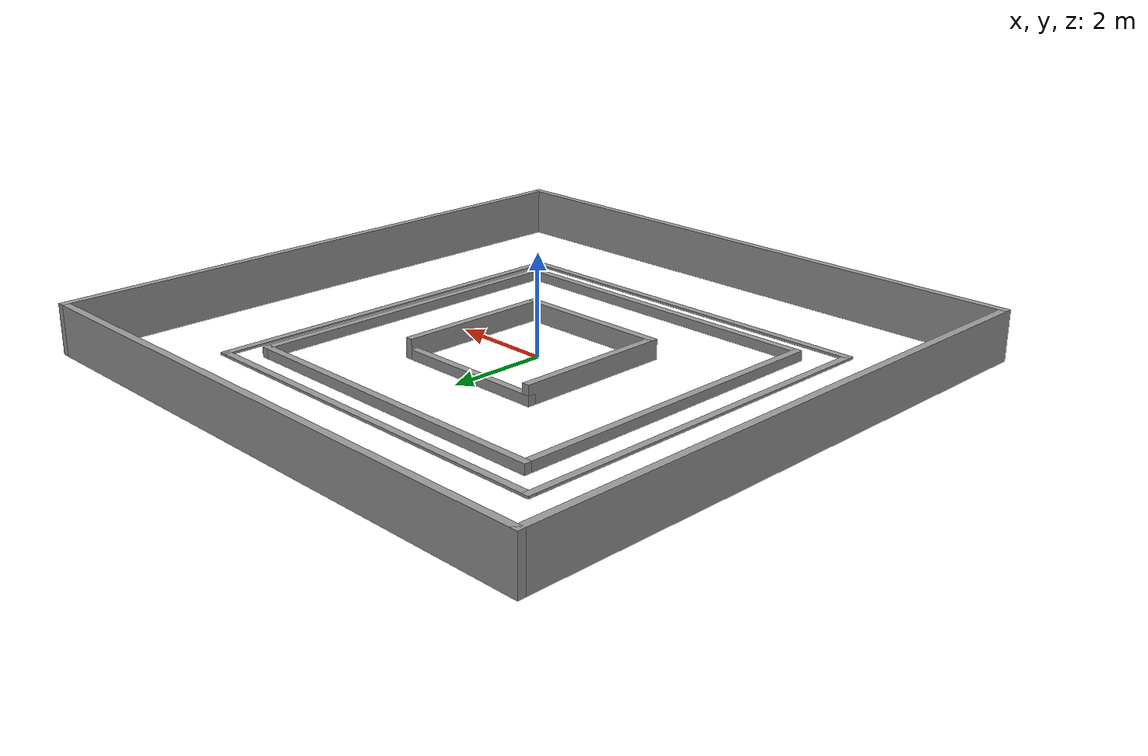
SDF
<?xml version='1.0'?>
<sdf version='1.6'>
  <model name='wtr_wall'>
    <pose frame=''>0.041 0.114 0 0 -0 0</pose>
    <link name='Wall_0'>
      <collision name='Wall_0_Collision'>
        <geometry>
          <box>
            <size>12.25 0.15 1</size>
          </box>
        </geometry>
        <pose frame=''>0 0 0.5 0 -0 0</pose>
      </collision>
      <visual name='Wall_0_Visual'>
        <pose frame=''>0 0 0.5 0 -0 0</pose>
        <geometry>
          <box>
            <size>12.25 0.15 1</size>
          </box>
        </geometry>
        <material>
          <script>
            <uri>file://media/materials/scripts/gazebo.material</uri>
            <name>Gazebo/Grey</name>
          </script>
          <ambient>1 1 1 1</ambient>
        </material>
        <meta>
          <layer>0</layer>
        </meta>
      </visual>
      <pose frame=''>-6.05 0 0 0 -0 -1.5708</pose>
    </link>
    <link name='Wall_1'>
      <collision name='Wall_1_Collision'>
        <geometry>
          <box>
            <size>12.25 0.15 1</size>
          </box>
        </geometry>
        <pose frame=''>0 0 0.5 0 -0 0</pose>
      </collision>
      <visual name='Wall_1_Visual'>
        <pose frame=''>0 0 0.5 0 -0 0</pose>
        <geometry>
          <box>
            <size>12.25 0.15 1</size>
          </box>
        </geometry>
        <material>
          <script>
            <uri>file://media/materials/scripts/gazebo.material</uri>
            <name>Gazebo/Grey</name>
          </script>
          <ambient>1 1 1 1</ambient>
        </material>
        <meta>
          <layer>0</layer>
        </meta>
      </visual>
      <pose frame=''>-0 -6.05 0 0 -0 0</pose>
    </link>
    <link name='Wall_10'>
      <collision name='Wall_10_Collision'>
        <geometry>
          <box>
            <size>7 0.15 0.2</size>
          </box>
        </geometry>
        <pose frame=''>0 0 0.1 0 -0 0</pose>
      </collision>
      <visual name='Wall_10_Visual'>
        <pose frame=''>0 0 0.1 0 -0 0</pose>
        <geometry>
          <box>
            <size>7 0.15 0.2</size>
          </box>
        </geometry>
        <material>
          <script>
            <uri>file://media/materials/scripts/gazebo.material</uri>
            <name>Gazebo/Grey</name>
          </script>
          <ambient>1 1 1 1</ambient>
        </material>
        <meta>
          <layer>0</layer>
        </meta>
      </visual>
      <pose frame=''>-3.459 0.036 0 0 -0 -1.5708</pose>
    </link>
    <link name='Wall_11'>
      <collision name='Wall_11_Collision'>
        <geometry>
          <box>
            <size>7 0.15 0.2</size>
          </box>
        </geometry>
        <pose frame=''>0 0 0.1 0 -0 0</pose>
      </collision>
      <visual name='Wall_11_Visual'>
        <pose frame=''>0 0 0.1 0 -0 0</pose>
        <geometry>
          <box>
            <size>7 0.15 0.2</size>
          </box>
        </geometry>
        <material>
          <script>
            <uri>file://media/materials/scripts/gazebo.material</uri>
            <name>Gazebo/Grey</name>
          </script>
          <ambient>1 1 1 1</ambient>
        </material>
        <meta>
          <layer>0</layer>
        </meta>
      </visual>
      <pose frame=''>-0.034 -3.389 0 0 -0 0</pose>
    </link>
    <link name='Wall_12'>
      <collision name='Wall_12_Collision'>
        <geometry>
          <box>
            <size>7 0.15 0.2</size>
          </box>
        </geometry>
        <pose frame=''>0 0 0.1 0 -0 0</pose>
      </collision>
      <visual name='Wall_12_Visual'>
        <pose frame=''>0 0 0.1 0 -0 0</pose>
        <geometry>
          <box>
            <size>7 0.15 0.2</size>
          </box>
        </geometry>
        <material>
          <script>
            <uri>file://media/materials/scripts/gazebo.material</uri>
            <name>Gazebo/Grey</name>
          </script>
          <ambient>1 1 1 1</ambient>
        </material>
        <meta>
          <layer>0</layer>
        </meta>
      </visual>
      <pose frame=''>3.391 0.036 0 0 -0 1.5708</pose>
    </link>
    <link name='Wall_13'>
      <collision name='Wall_13_Collision'>
        <geometry>
          <box>
            <size>7 0.15 0.2</size>
          </box>
        </geometry>
        <pose frame=''>0 0 0.1 0 -0 0</pose>
      </collision>
      <visual name='Wall_13_Visual'>
        <pose frame=''>0 0 0.1 0 -0 0</pose>
        <geometry>
          <box>
            <size>7 0.15 0.2</size>
          </box>
        </geometry>
        <material>
          <script>
            <uri>file://media/materials/scripts/gazebo.material</uri>
            <name>Gazebo/Grey</name>
          </script>
          <ambient>1 1 1 1</ambient>
        </material>
        <meta>
          <layer>0</layer>
        </meta>
      </visual>
      <pose frame=''>-0.034 3.461 0 0 -0 3.14159</pose>
    </link>
    <link name='Wall_18'>
      <collision name='Wall_18_Collision'>
        <geometry>
          <box>
            <size>3.25 0.15 0.4</size>
          </box>
        </geometry>
        <pose frame=''>0 0 0.2 0 -0 0</pose>
      </collision>
      <visual name='Wall_18_Visual'>
        <pose frame=''>0 0 0.2 0 -0 0</pose>
        <geometry>
          <box>
            <size>3.25 0.15 0.4</size>
          </box>
        </geometry>
        <material>
          <script>
            <uri>file://media/materials/scripts/gazebo.material</uri>
            <name>Gazebo/Grey</name>
          </script>
          <ambient>1 1 1 1</ambient>
        </material>
        <meta>
          <layer>0</layer>
        </meta>
      </visual>
      <pose frame=''>-1.573 0.026 0 0 -0 -1.5708</pose>
    </link>
    <link name='Wall_19'>
      <collision name='Wall_19_Collision'>
        <geometry>
          <box>
            <size>3.25 0.15 0.4</size>
          </box>
        </geometry>
        <pose frame=''>0 0 0.2 0 -0 0</pose>
      </collision>
      <visual name='Wall_19_Visual'>
        <pose frame=''>0 0 0.2 0 -0 0</pose>
        <geometry>
          <box>
            <size>3.25 0.15 0.4</size>
          </box>
        </geometry>
        <material>
          <script>
            <uri>file://media/materials/scripts/gazebo.material</uri>
            <name>Gazebo/Grey</name>
          </script>
          <ambient>1 1 1 1</ambient>
        </material>
        <meta>
          <layer>0</layer>
        </meta>
      </visual>
      <pose frame=''>-0.023 -1.524 0 0 -0 0</pose>
    </link>
    <link name='Wall_2'>
      <collision name='Wall_2_Collision'>
        <geometry>
          <box>
            <size>12.25 0.15 1</size>
          </box>
        </geometry>
        <pose frame=''>0 0 0.5 0 -0 0</pose>
      </collision>
      <visual name='Wall_2_Visual'>
        <pose frame=''>0 0 0.5 0 -0 0</pose>
        <geometry>
          <box>
            <size>12.25 0.15 1</size>
          </box>
        </geometry>
        <material>
          <script>
            <uri>file://media/materials/scripts/gazebo.material</uri>
            <name>Gazebo/Grey</name>
          </script>
          <ambient>1 1 1 1</ambient>
        </material>
        <meta>
          <layer>0</layer>
        </meta>
      </visual>
      <pose frame=''>6.05 0 0 0 -0 1.5708</pose>
    </link>
    <link name='Wall_20'>
      <collision name='Wall_20_Collision'>
        <geometry>
          <box>
            <size>3.25 0.15 0.4</size>
          </box>
        </geometry>
        <pose frame=''>0 0 0.2 0 -0 0</pose>
      </collision>
      <visual name='Wall_20_Visual'>
        <pose frame=''>0 0 0.2 0 -0 0</pose>
        <geometry>
          <box>
            <size>3.25 0.15 0.4</size>
          </box>
        </geometry>
        <material>
          <script>
            <uri>file://media/materials/scripts/gazebo.material</uri>
            <name>Gazebo/Grey</name>
          </script>
          <ambient>1 1 1 1</ambient>
        </material>
        <meta>
          <layer>0</layer>
        </meta>
      </visual>
      <pose frame=''>1.527 0.026 0 0 -0 1.5708</pose>
    </link>
    <link name='Wall_21'>
      <collision name='Wall_21_Collision'>
        <geometry>
          <box>
            <size>3.25 0.15 0.2</size>
          </box>
        </geometry>
        <pose frame=''>0 0 0.1 0 -0 0</pose>
      </collision>
      <visual name='Wall_21_Visual'>
        <pose frame=''>0 0 0.1 0 -0 0</pose>
        <geometry>
          <box>
            <size>3.25 0.15 0.2</size>
          </box>
        </geometry>
        <material>
          <script>
            <uri>file://media/materials/scripts/gazebo.material</uri>
            <name>Gazebo/Grey</name>
          </script>
          <ambient>1 1 1 1</ambient>
        </material>
        <meta>
          <layer>0</layer>
        </meta>
      </visual>
      <pose frame=''>-0.023 1.576 0 0 -0 3.14159</pose>
    </link>
    <link name='Wall_3'>
      <collision name='Wall_3_Collision'>
        <geometry>
          <box>
            <size>12.25 0.15 1</size>
          </box>
        </geometry>
        <pose frame=''>0 0 0.5 0 -0 0</pose>
      </collision>
      <visual name='Wall_3_Visual'>
        <pose frame=''>0 0 0.5 0 -0 0</pose>
        <geometry>
          <box>
            <size>12.25 0.15 1</size>
          </box>
        </geometry>
        <material>
          <script>
            <uri>file://media/materials/scripts/gazebo.material</uri>
            <name>Gazebo/Grey</name>
          </script>
          <ambient>1 1 1 1</ambient>
        </material>
        <meta>
          <layer>0</layer>
        </meta>
      </visual>
      <pose frame=''>-0 6.05 0 0 -0 3.14159</pose>
    </link>
    <link name='Wall_5'>
      <collision name='Wall_5_Collision'>
        <geometry>
          <box>
            <size>8.25 0.15 0.05</size>
          </box>
        </geometry>
        <pose frame=''>0 0 0.025 0 -0 0</pose>
      </collision>
      <visual name='Wall_5_Visual'>
        <pose frame=''>0 0 0.025 0 -0 0</pose>
        <geometry>
          <box>
            <size>8.25 0.15 0.05</size>
          </box>
        </geometry>
        <material>
          <script>
            <uri>file://media/materials/scripts/gazebo.material</uri>
            <name>Gazebo/Grey</name>
          </script>
          <ambient>1 1 1 1</ambient>
        </material>
        <meta>
          <layer>0</layer>
        </meta>
      </visual>
      <pose frame=''>-4.07 -0.083 0 0 -0 -1.5708</pose>
    </link>
    <link name='Wall_6'>
      <collision name='Wall_6_Collision'>
        <geometry>
          <box>
            <size>8.25 0.15 0.05</size>
          </box>
        </geometry>
        <pose frame=''>0 0 0.025 0 -0 0</pose>
      </collision>
      <visual name='Wall_6_Visual'>
        <pose frame=''>0 0 0.025 0 -0 0</pose>
        <geometry>
          <box>
            <size>8.25 0.15 0.05</size>
          </box>
        </geometry>
        <material>
          <script>
            <uri>file://media/materials/scripts/gazebo.material</uri>
            <name>Gazebo/Grey</name>
          </script>
          <ambient>1 1 1 1</ambient>
        </material>
        <meta>
          <layer>0</layer>
        </meta>
      </visual>
      <pose frame=''>-0.02 -4.133 0 0 -0 0</pose>
    </link>
    <link name='Wall_7'>
      <collision name='Wall_7_Collision'>
        <geometry>
          <box>
            <size>8.25 0.15 0.05</size>
          </box>
        </geometry>
        <pose frame=''>0 0 0.025 0 -0 0</pose>
      </collision>
      <visual name='Wall_7_Visual'>
        <pose frame=''>0 0 0.025 0 -0 0</pose>
        <geometry>
          <box>
            <size>8.25 0.15 0.05</size>
          </box>
        </geometry>
        <material>
          <script>
            <uri>file://media/materials/scripts/gazebo.material</uri>
            <name>Gazebo/Grey</name>
          </script>
          <ambient>1 1 1 1</ambient>
        </material>
        <meta>
          <layer>0</layer>
        </meta>
      </visual>
      <pose frame=''>4.03 -0.083 0 0 -0 1.5708</pose>
    </link>
    <link name='Wall_8'>
      <collision name='Wall_8_Collision'>
        <geometry>
          <box>
            <size>8.25 0.15 0.05</size>
          </box>
        </geometry>
        <pose frame=''>0 0 0.025 0 -0 0</pose>
      </collision>
      <visual name='Wall_8_Visual'>
        <pose frame=''>0 0 0.025 0 -0 0</pose>
        <geometry>
          <box>
            <size>8.25 0.15 0.05</size>
          </box>
        </geometry>
        <material>
          <script>
            <uri>file://media/materials/scripts/gazebo.material</uri>
            <name>Gazebo/Grey</name>
          </script>
          <ambient>1 1 1 1</ambient>
        </material>
        <meta>
          <layer>0</layer>
        </meta>
      </visual>
      <pose frame=''>-0.02 3.967 0 0 -0 3.14159</pose>
    </link>
    <static>1</static>
  </model>
</sdf>
